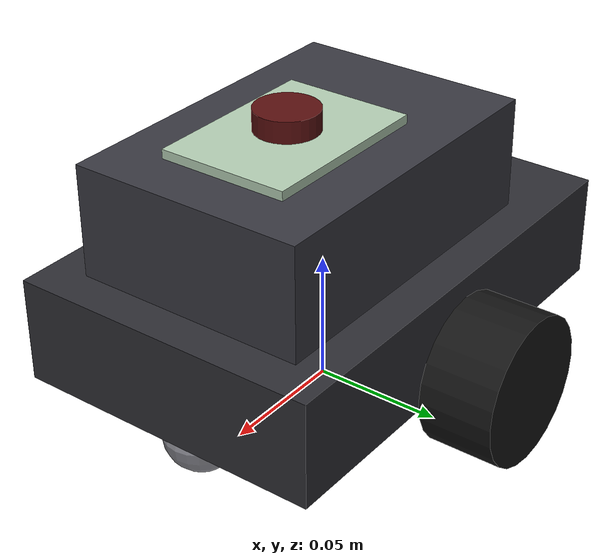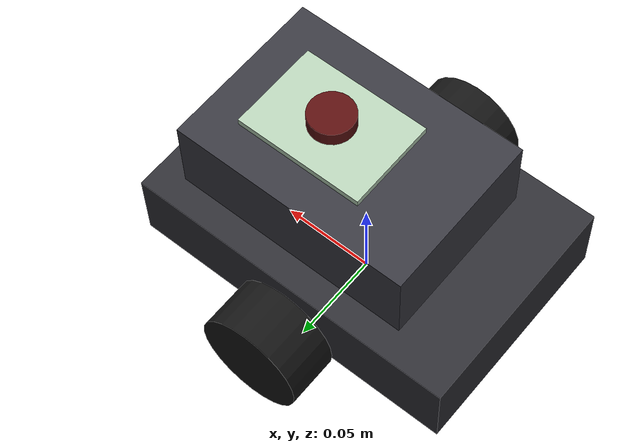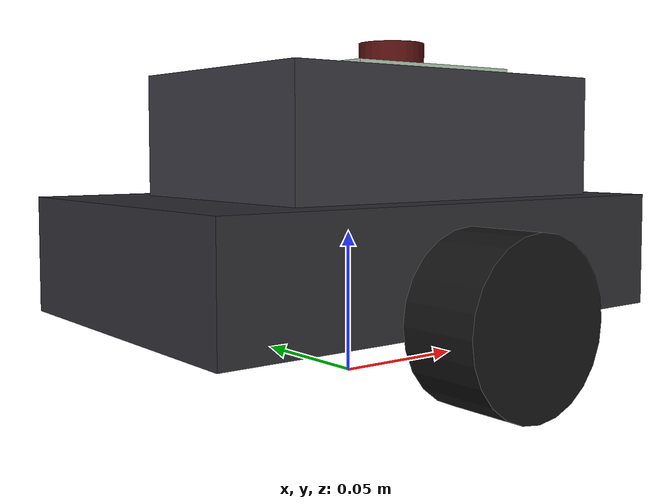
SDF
<?xml version="1.0" ?>
<sdf version="1.11">
  <model name="ev3">
    <pose>0 0 0 0 0 0</pose>
    <self_collide>false</self_collide>

    <!-- Chassis / EV3-Brick, Ursprung auf Achshöhe -->
    <link name="base_link">
      <pose>0 0 0.028 0 0 0</pose>
      <inertial>
        <mass>0.70</mass>
        <inertia>
          <ixx>0.00121</ixx>
          <iyy>0.00226</iyy>
          <izz>0.00273</izz>
        </inertia>
      </inertial>
      <collision name="chassis_collision">
        <pose>0 0 0.035 0 0 0</pose>
        <geometry>
          <box>
            <size>0.18 0.12 0.08</size>
          </box>
        </geometry>
      </collision>
      <!-- Unterer Rahmen -->
      <visual name="chassis">
        <pose>0 0 0.015 0 0 0</pose>
        <geometry>
          <box>
            <size>0.18 0.12 0.04</size>
          </box>
        </geometry>
        <material>
          <ambient>0.12 0.12 0.14 1</ambient>
          <diffuse>0.18 0.18 0.20 1</diffuse>
          <specular>0.1 0.1 0.1 1</specular>
        </material>
      </visual>
      <!-- EV3-Brick -->
      <visual name="brick">
        <pose>0.01 0 0.055 0 0 0</pose>
        <geometry>
          <box>
            <size>0.13 0.09 0.045</size>
          </box>
        </geometry>
        <material>
          <ambient>0.15 0.15 0.17 1</ambient>
          <diffuse>0.22 0.22 0.25 1</diffuse>
        </material>
      </visual>
      <!-- Display -->
      <visual name="screen">
        <pose>0.02 0 0.079 0 0 0</pose>
        <geometry>
          <box>
            <size>0.07 0.05 0.004</size>
          </box>
        </geometry>
        <material>
          <ambient>0.55 0.62 0.55 1</ambient>
          <diffuse>0.7 0.8 0.7 1</diffuse>
        </material>
      </visual>
      <!-- Rote Status-LED (Mittelknopf), blinkt über /led -->
      <visual name="led">
        <pose>0.02 0 0.086 0 0 0</pose>
        <geometry>
          <cylinder>
            <radius>0.012</radius>
            <length>0.008</length>
          </cylinder>
        </geometry>
        <material>
          <ambient>0.25 0.04 0.04 1</ambient>
          <diffuse>0.35 0.06 0.06 1</diffuse>
          <emissive>0 0 0 1</emissive>
        </material>
      </visual>
      <light name="led_light" type="point">
        <pose>0.02 0 0.10 0 0 0</pose>
        <diffuse>1 0.15 0.1 1</diffuse>
        <specular>0.4 0.05 0.03 1</specular>
        <attenuation>
          <range>0.35</range>
          <constant>0.4</constant>
          <linear>0.8</linear>
          <quadratic>0.3</quadratic>
        </attenuation>
        <cast_shadows>false</cast_shadows>
        <intensity>0</intensity>
      </light>
    </link>

    <link name="left_wheel">
      <pose>0 0.075 0.028 0 0 0</pose>
      <inertial>
        <mass>0.05</mass>
        <inertia>
          <ixx>0.000012</ixx>
          <iyy>0.000018</iyy>
          <izz>0.000012</izz>
        </inertia>
      </inertial>
      <collision name="collision">
        <pose>0 0 0 1.570796 0 0</pose>
        <geometry>
          <cylinder>
            <radius>0.028</radius>
            <length>0.028</length>
          </cylinder>
        </geometry>
        <surface>
          <friction>
            <ode>
              <mu>1.2</mu>
              <mu2>1.2</mu2>
              <slip1>0.0</slip1>
              <slip2>0.0</slip2>
            </ode>
          </friction>
        </surface>
      </collision>
      <visual name="visual">
        <pose>0 0 0 1.570796 0 0</pose>
        <geometry>
          <cylinder>
            <radius>0.028</radius>
            <length>0.028</length>
          </cylinder>
        </geometry>
        <material>
          <ambient>0.05 0.05 0.05 1</ambient>
          <diffuse>0.08 0.08 0.08 1</diffuse>
        </material>
      </visual>
    </link>

    <link name="right_wheel">
      <pose>0 -0.075 0.028 0 0 0</pose>
      <inertial>
        <mass>0.05</mass>
        <inertia>
          <ixx>0.000012</ixx>
          <iyy>0.000018</iyy>
          <izz>0.000012</izz>
        </inertia>
      </inertial>
      <collision name="collision">
        <pose>0 0 0 1.570796 0 0</pose>
        <geometry>
          <cylinder>
            <radius>0.028</radius>
            <length>0.028</length>
          </cylinder>
        </geometry>
        <surface>
          <friction>
            <ode>
              <mu>1.2</mu>
              <mu2>1.2</mu2>
              <slip1>0.0</slip1>
              <slip2>0.0</slip2>
            </ode>
          </friction>
        </surface>
      </collision>
      <visual name="visual">
        <pose>0 0 0 1.570796 0 0</pose>
        <geometry>
          <cylinder>
            <radius>0.028</radius>
            <length>0.028</length>
          </cylinder>
        </geometry>
        <material>
          <ambient>0.05 0.05 0.05 1</ambient>
          <diffuse>0.08 0.08 0.08 1</diffuse>
        </material>
      </visual>
    </link>

    <!-- Stützrolle vorne -->
    <link name="caster">
      <pose>0.07 0 0.014 0 0 0</pose>
      <inertial>
        <mass>0.02</mass>
        <inertia>
          <ixx>0.000002</ixx>
          <iyy>0.000002</iyy>
          <izz>0.000002</izz>
        </inertia>
      </inertial>
      <collision name="collision">
        <geometry>
          <sphere>
            <radius>0.014</radius>
          </sphere>
        </geometry>
        <surface>
          <friction>
            <ode>
              <mu>0.05</mu>
              <mu2>0.05</mu2>
            </ode>
          </friction>
        </surface>
      </collision>
      <visual name="visual">
        <geometry>
          <sphere>
            <radius>0.014</radius>
          </sphere>
        </geometry>
        <material>
          <ambient>0.4 0.4 0.42 1</ambient>
          <diffuse>0.55 0.55 0.58 1</diffuse>
        </material>
      </visual>
    </link>

    <joint name="left_wheel_joint" type="revolute">
      <parent>base_link</parent>
      <child>left_wheel</child>
      <axis>
        <xyz expressed_in="base_link">0 1 0</xyz>
        <limit>
          <lower>-1e16</lower>
          <upper>1e16</upper>
        </limit>
      </axis>
    </joint>

    <joint name="right_wheel_joint" type="revolute">
      <parent>base_link</parent>
      <child>right_wheel</child>
      <axis>
        <xyz expressed_in="base_link">0 1 0</xyz>
        <limit>
          <lower>-1e16</lower>
          <upper>1e16</upper>
        </limit>
      </axis>
    </joint>

    <joint name="caster_joint" type="ball">
      <parent>base_link</parent>
      <child>caster</child>
    </joint>

    <plugin filename="gz-sim-diff-drive-system" name="gz::sim::systems::DiffDrive">
      <left_joint>left_wheel_joint</left_joint>
      <right_joint>right_wheel_joint</right_joint>
      <wheel_separation>0.15</wheel_separation>
      <wheel_radius>0.028</wheel_radius>
      <min_velocity>-1.0</min_velocity>
      <max_velocity>1.0</max_velocity>
      <topic>/cmd_vel</topic>
      <odom_topic>/odom</odom_topic>
      <odom_publish_frequency>50</odom_publish_frequency>
      <frame_id>odom</frame_id>
      <child_frame_id>base_link</child_frame_id>
    </plugin>
  </model>
</sdf>
